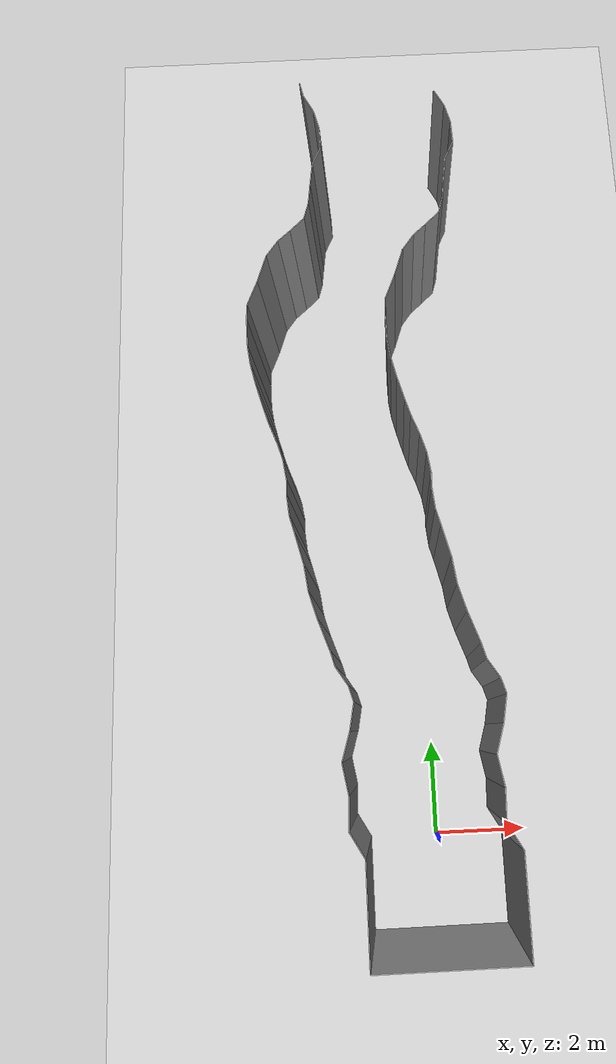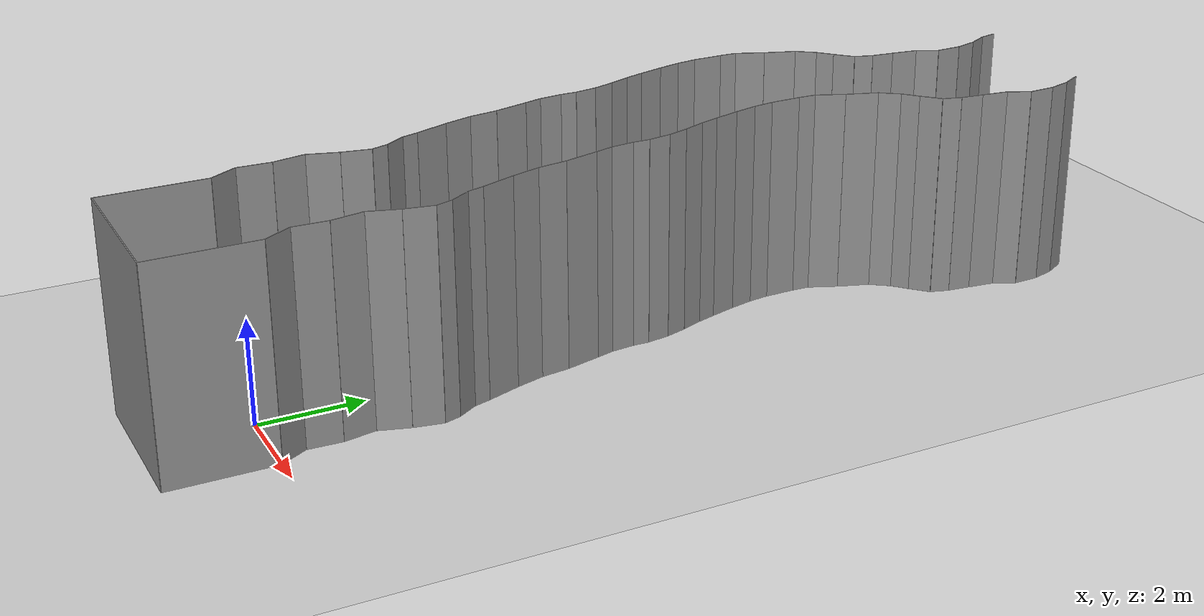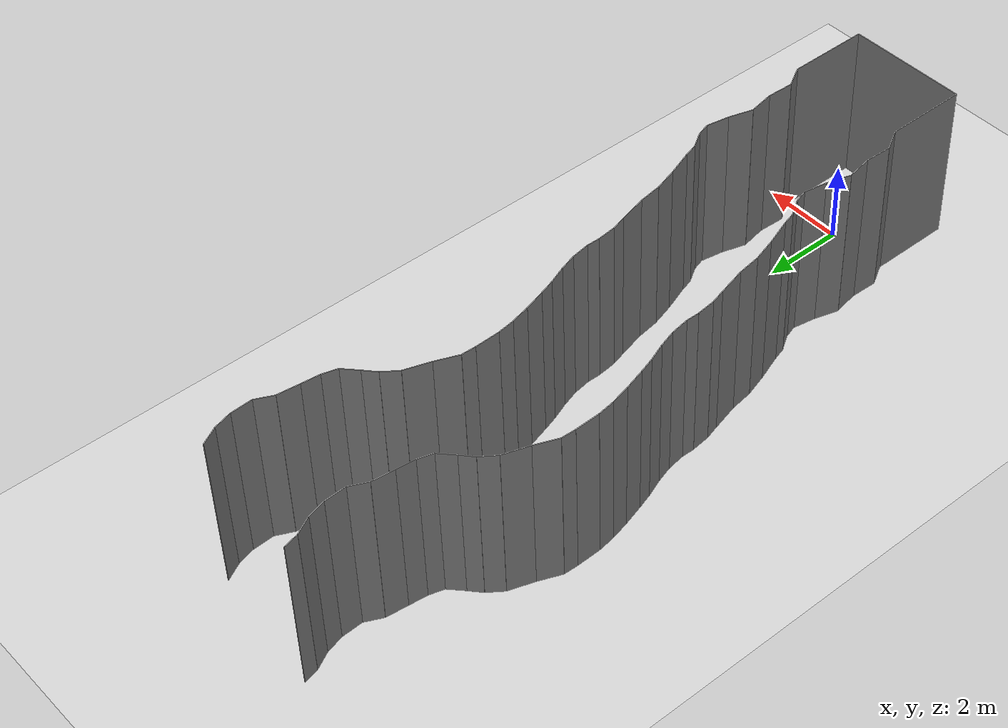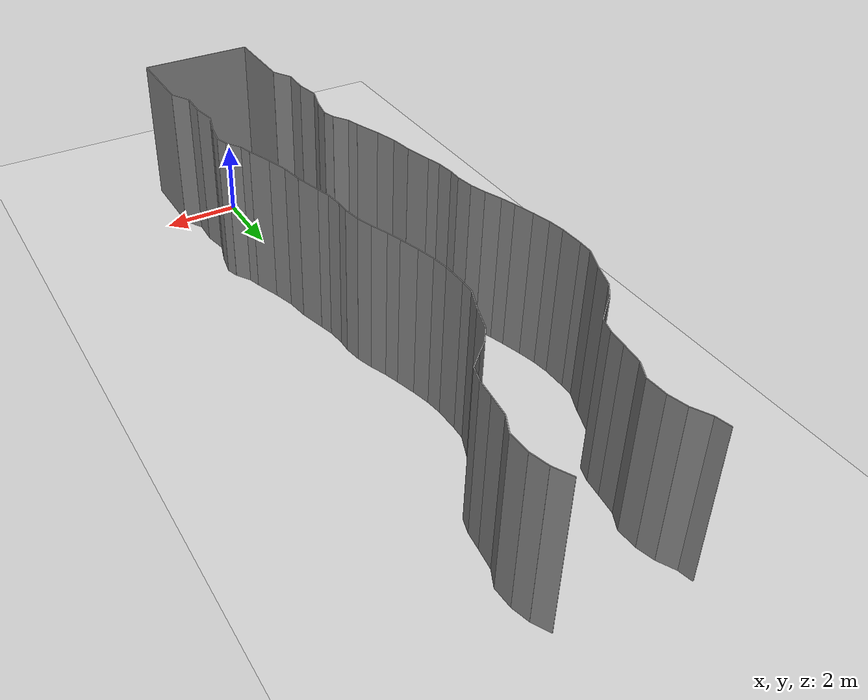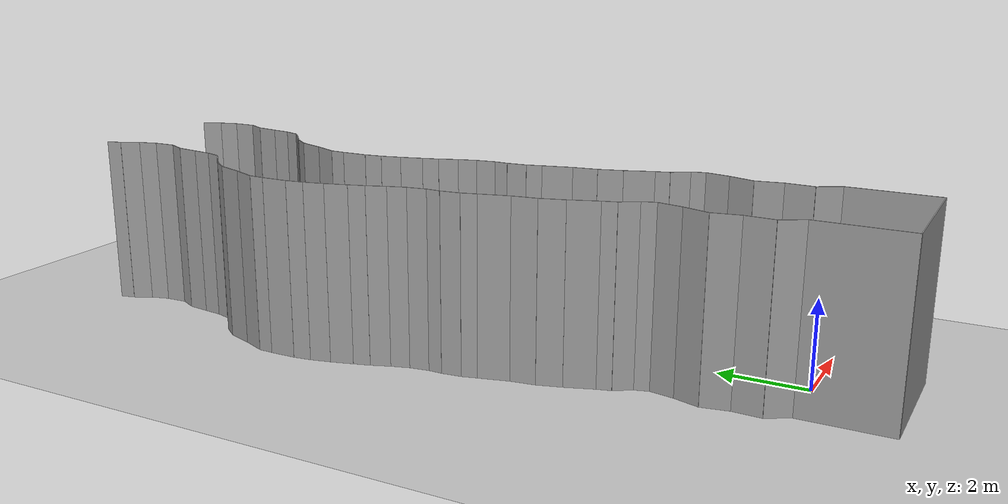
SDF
<sdf version="1.6">
 <world name="default">
  <model name="ground_plane">
   <static>1</static>
   <link name="link">
    <collision name="collision">
     <geometry><plane><normal>0 0 1</normal><size>200 200</size></plane></geometry>
     <surface><friction><ode><mu>100</mu><mu2>50</mu2></ode></friction></surface>
    </collision>
    <visual name="visual">
     <cast_shadows>0</cast_shadows>
     <geometry><plane><normal>0 0 1</normal><size>200 200</size></plane></geometry>
     <material>
      <script><uri>file://media/materials/scripts/gazebo.material</uri><name>Gazebo/Grey</name></script>
     </material>
    </visual>
   </link>
   <pose>0 100 0 0 -0 0</pose>
  </model>
  <model name="wall_back">
   <static>1</static>
   <pose>0.0 -2 2 0.0 0 0.0</pose>
   <link name="link">
    <collision name="collision"><geometry><box><size>3 0.02 4</size></box></geometry></collision>
    <visual name="visual">
     <material>
      <script><name>Gazebo/Grey</name><uri>file://media/materials/scripts/gazebo.material</uri></script>
     </material>
     <geometry><box><size>3 0.02 4</size></box></geometry>
    </visual>
   </link>
  </model>
  <model name="wall_left">
   <static>1</static>
   <pose>1.5 -1 2 0 0 0.00</pose>
   <link name="link">
    <collision name="collision"><geometry><box><size>0.02 2 4</size></box></geometry></collision>
    <visual name="visual">
     <material>
      <script><name>Gazebo/Grey</name><uri>file://media/materials/scripts/gazebo.material</uri></script>
     </material>
     <geometry><box><size>0.02 2 4</size></box></geometry>
    </visual>
   </link>
  </model>
  <model name="wall_right">
   <static>1</static>
   <pose>-1.5 -1 2 0 0 0.00</pose>
   <link name="link">
    <collision name="collision"><geometry><box><size>0.02 2 4</size></box></geometry></collision>
    <visual name="visual">
     <material>
      <script><name>Gazebo/Grey</name><uri>file://media/materials/scripts/gazebo.material</uri></script>
     </material>
     <geometry><box><size>0.02 2 4</size></box></geometry>
    </visual>
   </link>
  </model>
  <model name="wall_0">
   <static>1</static>
   <pose>-1.646472720653088 0.2521328927211947 2 0 0 0.5262828498397113</pose>
   <link name="link">
    <collision name="collision"><geometry><box><size>0.02 0.583181801799 4</size></box></geometry></collision>
    <visual name="visual">
     <material>
      <script><name>Gazebo/Grey</name><uri>file://media/materials/scripts/gazebo.material</uri></script>
     </material>
     <geometry><box><size>0.02 0.583181801799 4</size></box></geometry>
    </visual>
   </link>
  </model>
  <model name="wall_1">
   <static>1</static>
   <pose>1.353527279346912 0.2521328927211947 2 0 0 0.5262828498397113</pose>
   <link name="link">
    <collision name="collision"><geometry><box><size>0.02 0.583181801799 4</size></box></geometry></collision>
    <visual name="visual">
     <material>
      <script><name>Gazebo/Grey</name><uri>file://media/materials/scripts/gazebo.material</uri></script>
     </material>
     <geometry><box><size>0.02 0.583181801799 4</size></box></geometry>
    </visual>
   </link>
  </model>
  <model name="wall_2">
   <static>1</static>
   <pose>-1.7805583796743014 0.8299118691459411 2 0 0 -0.03802008703757331</pose>
   <link name="link">
    <collision name="collision"><geometry><box><size>0.02 0.651763181308 4</size></box></geometry></collision>
    <visual name="visual">
     <material>
      <script><name>Gazebo/Grey</name><uri>file://media/materials/scripts/gazebo.material</uri></script>
     </material>
     <geometry><box><size>0.02 0.651763181308 4</size></box></geometry>
    </visual>
   </link>
  </model>
  <model name="wall_3">
   <static>1</static>
   <pose>1.2194416203256986 0.8299118691459411 2 0 0 -0.03802008703757331</pose>
   <link name="link">
    <collision name="collision"><geometry><box><size>0.02 0.651763181308 4</size></box></geometry></collision>
    <visual name="visual">
     <material>
      <script><name>Gazebo/Grey</name><uri>file://media/materials/scripts/gazebo.material</uri></script>
     </material>
     <geometry><box><size>0.02 0.651763181308 4</size></box></geometry>
    </visual>
   </link>
  </model>
  <model name="wall_4">
   <static>1</static>
   <pose>-1.8246142902141258 1.4657746014149375 2 0 0 0.1799781418398594</pose>
   <link name="link">
    <collision name="collision"><geometry><box><size>0.02 0.63061930879 4</size></box></geometry></collision>
    <visual name="visual">
     <material>
      <script><name>Gazebo/Grey</name><uri>file://media/materials/scripts/gazebo.material</uri></script>
     </material>
     <geometry><box><size>0.02 0.63061930879 4</size></box></geometry>
    </visual>
   </link>
  </model>
  <model name="wall_5">
   <static>1</static>
   <pose>1.1753857097858742 1.4657746014149375 2 0 0 0.1799781418398594</pose>
   <link name="link">
    <collision name="collision"><geometry><box><size>0.02 0.63061930879 4</size></box></geometry></collision>
    <visual name="visual">
     <material>
      <script><name>Gazebo/Grey</name><uri>file://media/materials/scripts/gazebo.material</uri></script>
     </material>
     <geometry><box><size>0.02 0.63061930879 4</size></box></geometry>
    </visual>
   </link>
  </model>
  <model name="wall_6">
   <static>1</static>
   <pose>-1.7928527109547967 2.067357282523565 2 0 0 -0.29395733413151454</pose>
   <link name="link">
    <collision name="collision"><geometry><box><size>0.02 0.608848775356 4</size></box></geometry></collision>
    <visual name="visual">
     <material>
      <script><name>Gazebo/Grey</name><uri>file://media/materials/scripts/gazebo.material</uri></script>
     </material>
     <geometry><box><size>0.02 0.608848775356 4</size></box></geometry>
    </visual>
   </link>
  </model>
  <model name="wall_7">
   <static>1</static>
   <pose>1.2071472890452033 2.067357282523565 2 0 0 -0.29395733413151454</pose>
   <link name="link">
    <collision name="collision"><geometry><box><size>0.02 0.608848775356 4</size></box></geometry></collision>
    <visual name="visual">
     <material>
      <script><name>Gazebo/Grey</name><uri>file://media/materials/scripts/gazebo.material</uri></script>
     </material>
     <geometry><box><size>0.02 0.608848775356 4</size></box></geometry>
    </visual>
   </link>
  </model>
  <model name="wall_8">
   <static>1</static>
   <pose>-1.654111112099372 2.636833541480434 2 0 0 -0.1797544799252827</pose>
   <link name="link">
    <collision name="collision"><geometry><box><size>0.02 0.565329253438 4</size></box></geometry></collision>
    <visual name="visual">
     <material>
      <script><name>Gazebo/Grey</name><uri>file://media/materials/scripts/gazebo.material</uri></script>
     </material>
     <geometry><box><size>0.02 0.565329253438 4</size></box></geometry>
    </visual>
   </link>
  </model>
  <model name="wall_9">
   <static>1</static>
   <pose>1.345888887900628 2.636833541480434 2 0 0 -0.1797544799252827</pose>
   <link name="link">
    <collision name="collision"><geometry><box><size>0.02 0.565329253438 4</size></box></geometry></collision>
    <visual name="visual">
     <material>
      <script><name>Gazebo/Grey</name><uri>file://media/materials/scripts/gazebo.material</uri></script>
     </material>
     <geometry><box><size>0.02 0.565329253438 4</size></box></geometry>
    </visual>
   </link>
  </model>
  <model name="wall_10">
   <static>1</static>
   <pose>-1.651624679783498 3.0721492965574253 2 0 0 0.2966365221625628</pose>
   <link name="link">
    <collision name="collision"><geometry><box><size>0.02 0.328770070746 4</size></box></geometry></collision>
    <visual name="visual">
     <material>
      <script><name>Gazebo/Grey</name><uri>file://media/materials/scripts/gazebo.material</uri></script>
     </material>
     <geometry><box><size>0.02 0.328770070746 4</size></box></geometry>
    </visual>
   </link>
  </model>
  <model name="wall_11">
   <static>1</static>
   <pose>1.348375320216502 3.0721492965574253 2 0 0 0.2966365221625628</pose>
   <link name="link">
    <collision name="collision"><geometry><box><size>0.02 0.328770070746 4</size></box></geometry></collision>
    <visual name="visual">
     <material>
      <script><name>Gazebo/Grey</name><uri>file://media/materials/scripts/gazebo.material</uri></script>
     </material>
     <geometry><box><size>0.02 0.328770070746 4</size></box></geometry>
    </visual>
   </link>
  </model>
  <model name="wall_12">
   <static>1</static>
   <pose>-1.8217730860297554 3.419943185669444 2 0 0 0.5697643503131937</pose>
   <link name="link">
    <collision name="collision"><geometry><box><size>0.02 0.452688827957 4</size></box></geometry></collision>
    <visual name="visual">
     <material>
      <script><name>Gazebo/Grey</name><uri>file://media/materials/scripts/gazebo.material</uri></script>
     </material>
     <geometry><box><size>0.02 0.452688827957 4</size></box></geometry>
    </visual>
   </link>
  </model>
  <model name="wall_13">
   <static>1</static>
   <pose>1.1782269139702446 3.419943185669444 2 0 0 0.5697643503131937</pose>
   <link name="link">
    <collision name="collision"><geometry><box><size>0.02 0.452688827957 4</size></box></geometry></collision>
    <visual name="visual">
     <material>
      <script><name>Gazebo/Grey</name><uri>file://media/materials/scripts/gazebo.material</uri></script>
     </material>
     <geometry><box><size>0.02 0.452688827957 4</size></box></geometry>
    </visual>
   </link>
  </model>
  <model name="wall_14">
   <static>1</static>
   <pose>-1.9887674820835646 3.7673717069043113 2 0 0 0.2788014066412116</pose>
   <link name="link">
    <collision name="collision"><geometry><box><size>0.02 0.326279274049 4</size></box></geometry></collision>
    <visual name="visual">
     <material>
      <script><name>Gazebo/Grey</name><uri>file://media/materials/scripts/gazebo.material</uri></script>
     </material>
     <geometry><box><size>0.02 0.326279274049 4</size></box></geometry>
    </visual>
   </link>
  </model>
  <model name="wall_15">
   <static>1</static>
   <pose>1.0112325179164354 3.7673717069043113 2 0 0 0.2788014066412116</pose>
   <link name="link">
    <collision name="collision"><geometry><box><size>0.02 0.326279274049 4</size></box></geometry></collision>
    <visual name="visual">
     <material>
      <script><name>Gazebo/Grey</name><uri>file://media/materials/scripts/gazebo.material</uri></script>
     </material>
     <geometry><box><size>0.02 0.326279274049 4</size></box></geometry>
    </visual>
   </link>
  </model>
  <model name="wall_16">
   <static>1</static>
   <pose>-2.1496737845620277 4.248490738769129 2 0 0 0.3435593770522331</pose>
   <link name="link">
    <collision name="collision"><geometry><box><size>0.02 0.688810674007 4</size></box></geometry></collision>
    <visual name="visual">
     <material>
      <script><name>Gazebo/Grey</name><uri>file://media/materials/scripts/gazebo.material</uri></script>
     </material>
     <geometry><box><size>0.02 0.688810674007 4</size></box></geometry>
    </visual>
   </link>
  </model>
  <model name="wall_17">
   <static>1</static>
   <pose>0.8503262154379723 4.248490738769129 2 0 0 0.3435593770522331</pose>
   <link name="link">
    <collision name="collision"><geometry><box><size>0.02 0.688810674007 4</size></box></geometry></collision>
    <visual name="visual">
     <material>
      <script><name>Gazebo/Grey</name><uri>file://media/materials/scripts/gazebo.material</uri></script>
     </material>
     <geometry><box><size>0.02 0.688810674007 4</size></box></geometry>
    </visual>
   </link>
  </model>
  <model name="wall_18">
   <static>1</static>
   <pose>-2.3453692192830045 4.846442544064273 2 0 0 0.28333763011179336</pose>
   <link name="link">
    <collision name="collision"><geometry><box><size>0.02 0.570076105899 4</size></box></geometry></collision>
    <visual name="visual">
     <material>
      <script><name>Gazebo/Grey</name><uri>file://media/materials/scripts/gazebo.material</uri></script>
     </material>
     <geometry><box><size>0.02 0.570076105899 4</size></box></geometry>
    </visual>
   </link>
  </model>
  <model name="wall_19">
   <static>1</static>
   <pose>0.6546307807169955 4.846442544064273 2 0 0 0.28333763011179336</pose>
   <link name="link">
    <collision name="collision"><geometry><box><size>0.02 0.570076105899 4</size></box></geometry></collision>
    <visual name="visual">
     <material>
      <script><name>Gazebo/Grey</name><uri>file://media/materials/scripts/gazebo.material</uri></script>
     </material>
     <geometry><box><size>0.02 0.570076105899 4</size></box></geometry>
    </visual>
   </link>
  </model>
  <model name="wall_20">
   <static>1</static>
   <pose>-2.464495090356621 5.401648394360598 2 0 0 0.1391848641803248</pose>
   <link name="link">
    <collision name="collision"><geometry><box><size>0.02 0.568564181072 4</size></box></geometry></collision>
    <visual name="visual">
     <material>
      <script><name>Gazebo/Grey</name><uri>file://media/materials/scripts/gazebo.material</uri></script>
     </material>
     <geometry><box><size>0.02 0.568564181072 4</size></box></geometry>
    </visual>
   </link>
  </model>
  <model name="wall_21">
   <static>1</static>
   <pose>0.5355049096433788 5.401648394360598 2 0 0 0.1391848641803248</pose>
   <link name="link">
    <collision name="collision"><geometry><box><size>0.02 0.568564181072 4</size></box></geometry></collision>
    <visual name="visual">
     <material>
      <script><name>Gazebo/Grey</name><uri>file://media/materials/scripts/gazebo.material</uri></script>
     </material>
     <geometry><box><size>0.02 0.568564181072 4</size></box></geometry>
    </visual>
   </link>
  </model>
  <model name="wall_22">
   <static>1</static>
   <pose>-2.5908645229118625 6.020460067990556 2 0 0 0.25224741727527383</pose>
   <link name="link">
    <collision name="collision"><geometry><box><size>0.02 0.696602220084 4</size></box></geometry></collision>
    <visual name="visual">
     <material>
      <script><name>Gazebo/Grey</name><uri>file://media/materials/scripts/gazebo.material</uri></script>
     </material>
     <geometry><box><size>0.02 0.696602220084 4</size></box></geometry>
    </visual>
   </link>
  </model>
  <model name="wall_23">
   <static>1</static>
   <pose>0.40913547708813747 6.020460067990556 2 0 0 0.25224741727527383</pose>
   <link name="link">
    <collision name="collision"><geometry><box><size>0.02 0.696602220084 4</size></box></geometry></collision>
    <visual name="visual">
     <material>
      <script><name>Gazebo/Grey</name><uri>file://media/materials/scripts/gazebo.material</uri></script>
     </material>
     <geometry><box><size>0.02 0.696602220084 4</size></box></geometry>
    </visual>
   </link>
  </model>
  <model name="wall_24">
   <static>1</static>
   <pose>-2.7244688160468784 6.529034117871786 2 0 0 0.2660243439465342</pose>
   <link name="link">
    <collision name="collision"><geometry><box><size>0.02 0.355081017718 4</size></box></geometry></collision>
    <visual name="visual">
     <material>
      <script><name>Gazebo/Grey</name><uri>file://media/materials/scripts/gazebo.material</uri></script>
     </material>
     <geometry><box><size>0.02 0.355081017718 4</size></box></geometry>
    </visual>
   </link>
  </model>
  <model name="wall_25">
   <static>1</static>
   <pose>0.2755311839531216 6.529034117871786 2 0 0 0.2660243439465342</pose>
   <link name="link">
    <collision name="collision"><geometry><box><size>0.02 0.355081017718 4</size></box></geometry></collision>
    <visual name="visual">
     <material>
      <script><name>Gazebo/Grey</name><uri>file://media/materials/scripts/gazebo.material</uri></script>
     </material>
     <geometry><box><size>0.02 0.355081017718 4</size></box></geometry>
    </visual>
   </link>
  </model>
  <model name="wall_26">
   <static>1</static>
   <pose>-2.7943474655296257 6.927998866993099 2 0 0 0.1015674703593804</pose>
   <link name="link">
    <collision name="collision"><geometry><box><size>0.02 0.457697678211 4</size></box></geometry></collision>
    <visual name="visual">
     <material>
      <script><name>Gazebo/Grey</name><uri>file://media/materials/scripts/gazebo.material</uri></script>
     </material>
     <geometry><box><size>0.02 0.457697678211 4</size></box></geometry>
    </visual>
   </link>
  </model>
  <model name="wall_27">
   <static>1</static>
   <pose>0.20565253447037435 6.927998866993099 2 0 0 0.1015674703593804</pose>
   <link name="link">
    <collision name="collision"><geometry><box><size>0.02 0.457697678211 4</size></box></geometry></collision>
    <visual name="visual">
     <material>
      <script><name>Gazebo/Grey</name><uri>file://media/materials/scripts/gazebo.material</uri></script>
     </material>
     <geometry><box><size>0.02 0.457697678211 4</size></box></geometry>
    </visual>
   </link>
  </model>
  <model name="wall_28">
   <static>1</static>
   <pose>-2.813771798485691 7.314480452146644 2 0 0 -0.023792948814899594</pose>
   <link name="link">
    <collision name="collision"><geometry><box><size>0.02 0.317714182185 4</size></box></geometry></collision>
    <visual name="visual">
     <material>
      <script><name>Gazebo/Grey</name><uri>file://media/materials/scripts/gazebo.material</uri></script>
     </material>
     <geometry><box><size>0.02 0.317714182185 4</size></box></geometry>
    </visual>
   </link>
  </model>
  <model name="wall_29">
   <static>1</static>
   <pose>0.18622820151430908 7.314480452146644 2 0 0 -0.023792948814899594</pose>
   <link name="link">
    <collision name="collision"><geometry><box><size>0.02 0.317714182185 4</size></box></geometry></collision>
    <visual name="visual">
     <material>
      <script><name>Gazebo/Grey</name><uri>file://media/materials/scripts/gazebo.material</uri></script>
     </material>
     <geometry><box><size>0.02 0.317714182185 4</size></box></geometry>
    </visual>
   </link>
  </model>
  <model name="wall_30">
   <static>1</static>
   <pose>-2.842885285728868 7.694288640828782 2 0 0 0.14775419900061726</pose>
   <link name="link">
    <collision name="collision"><geometry><box><size>0.02 0.44686103244 4</size></box></geometry></collision>
    <visual name="visual">
     <material>
      <script><name>Gazebo/Grey</name><uri>file://media/materials/scripts/gazebo.material</uri></script>
     </material>
     <geometry><box><size>0.02 0.44686103244 4</size></box></geometry>
    </visual>
   </link>
  </model>
  <model name="wall_31">
   <static>1</static>
   <pose>0.157114714271132 7.694288640828782 2 0 0 0.14775419900061726</pose>
   <link name="link">
    <collision name="collision"><geometry><box><size>0.02 0.44686103244 4</size></box></geometry></collision>
    <visual name="visual">
     <material>
      <script><name>Gazebo/Grey</name><uri>file://media/materials/scripts/gazebo.material</uri></script>
     </material>
     <geometry><box><size>0.02 0.44686103244 4</size></box></geometry>
    </visual>
   </link>
  </model>
  <model name="wall_32">
   <static>1</static>
   <pose>-2.937693382810968 8.119197226541164 2 0 0 0.2947896951456151</pose>
   <link name="link">
    <collision name="collision"><geometry><box><size>0.02 0.426210374705 4</size></box></geometry></collision>
    <visual name="visual">
     <material>
      <script><name>Gazebo/Grey</name><uri>file://media/materials/scripts/gazebo.material</uri></script>
     </material>
     <geometry><box><size>0.02 0.426210374705 4</size></box></geometry>
    </visual>
   </link>
  </model>
  <model name="wall_33">
   <static>1</static>
   <pose>0.062306617189031854 8.119197226541164 2 0 0 0.2947896951456151</pose>
   <link name="link">
    <collision name="collision"><geometry><box><size>0.02 0.426210374705 4</size></box></geometry></collision>
    <visual name="visual">
     <material>
      <script><name>Gazebo/Grey</name><uri>file://media/materials/scripts/gazebo.material</uri></script>
     </material>
     <geometry><box><size>0.02 0.426210374705 4</size></box></geometry>
    </visual>
   </link>
  </model>
  <model name="wall_34">
   <static>1</static>
   <pose>-3.0810454975317696 8.535709995251565 2 0 0 0.3658107050440577</pose>
   <link name="link">
    <collision name="collision"><geometry><box><size>0.02 0.455327663276 4</size></box></geometry></collision>
    <visual name="visual">
     <material>
      <script><name>Gazebo/Grey</name><uri>file://media/materials/scripts/gazebo.material</uri></script>
     </material>
     <geometry><box><size>0.02 0.455327663276 4</size></box></geometry>
    </visual>
   </link>
  </model>
  <model name="wall_35">
   <static>1</static>
   <pose>-0.0810454975317696 8.535709995251565 2 0 0 0.3658107050440577</pose>
   <link name="link">
    <collision name="collision"><geometry><box><size>0.02 0.455327663276 4</size></box></geometry></collision>
    <visual name="visual">
     <material>
      <script><name>Gazebo/Grey</name><uri>file://media/materials/scripts/gazebo.material</uri></script>
     </material>
     <geometry><box><size>0.02 0.455327663276 4</size></box></geometry>
    </visual>
   </link>
  </model>
  <model name="wall_36">
   <static>1</static>
   <pose>-3.2181885288587333 8.930879608150983 2 0 0 0.29615059662219506</pose>
   <link name="link">
    <collision name="collision"><geometry><box><size>0.02 0.381757807621 4</size></box></geometry></collision>
    <visual name="visual">
     <material>
      <script><name>Gazebo/Grey</name><uri>file://media/materials/scripts/gazebo.material</uri></script>
     </material>
     <geometry><box><size>0.02 0.381757807621 4</size></box></geometry>
    </visual>
   </link>
  </model>
  <model name="wall_37">
   <static>1</static>
   <pose>-0.2181885288587333 8.930879608150983 2 0 0 0.29615059662219506</pose>
   <link name="link">
    <collision name="collision"><geometry><box><size>0.02 0.381757807621 4</size></box></geometry></collision>
    <visual name="visual">
     <material>
      <script><name>Gazebo/Grey</name><uri>file://media/materials/scripts/gazebo.material</uri></script>
     </material>
     <geometry><box><size>0.02 0.381757807621 4</size></box></geometry>
    </visual>
   </link>
  </model>
  <model name="wall_38">
   <static>1</static>
   <pose>-3.3446470436890436 9.365705057543302 2 0 0 0.2734520063304953</pose>
   <link name="link">
    <collision name="collision"><geometry><box><size>0.02 0.523980989084 4</size></box></geometry></collision>
    <visual name="visual">
     <material>
      <script><name>Gazebo/Grey</name><uri>file://media/materials/scripts/gazebo.material</uri></script>
     </material>
     <geometry><box><size>0.02 0.523980989084 4</size></box></geometry>
    </visual>
   </link>
  </model>
  <model name="wall_39">
   <static>1</static>
   <pose>-0.34464704368904364 9.365705057543302 2 0 0 0.2734520063304953</pose>
   <link name="link">
    <collision name="collision"><geometry><box><size>0.02 0.523980989084 4</size></box></geometry></collision>
    <visual name="visual">
     <material>
      <script><name>Gazebo/Grey</name><uri>file://media/materials/scripts/gazebo.material</uri></script>
     </material>
     <geometry><box><size>0.02 0.523980989084 4</size></box></geometry>
    </visual>
   </link>
  </model>
  <model name="wall_40">
   <static>1</static>
   <pose>-3.4694642354787946 9.847987940979522 2 0 0 0.23084731840499068</pose>
   <link name="link">
    <collision name="collision"><geometry><box><size>0.02 0.472590062462 4</size></box></geometry></collision>
    <visual name="visual">
     <material>
      <script><name>Gazebo/Grey</name><uri>file://media/materials/scripts/gazebo.material</uri></script>
     </material>
     <geometry><box><size>0.02 0.472590062462 4</size></box></geometry>
    </visual>
   </link>
  </model>
  <model name="wall_41">
   <static>1</static>
   <pose>-0.46946423547879457 9.847987940979522 2 0 0 0.23084731840499068</pose>
   <link name="link">
    <collision name="collision"><geometry><box><size>0.02 0.472590062462 4</size></box></geometry></collision>
    <visual name="visual">
     <material>
      <script><name>Gazebo/Grey</name><uri>file://media/materials/scripts/gazebo.material</uri></script>
     </material>
     <geometry><box><size>0.02 0.472590062462 4</size></box></geometry>
    </visual>
   </link>
  </model>
  <model name="wall_42">
   <static>1</static>
   <pose>-3.550245482368944 10.282113419791324 2 0 0 0.13015921709245903</pose>
   <link name="link">
    <collision name="collision"><geometry><box><size>0.02 0.411679649236 4</size></box></geometry></collision>
    <visual name="visual">
     <material>
      <script><name>Gazebo/Grey</name><uri>file://media/materials/scripts/gazebo.material</uri></script>
     </material>
     <geometry><box><size>0.02 0.411679649236 4</size></box></geometry>
    </visual>
   </link>
  </model>
  <model name="wall_43">
   <static>1</static>
   <pose>-0.5502454823689442 10.282113419791324 2 0 0 0.13015921709245903</pose>
   <link name="link">
    <collision name="collision"><geometry><box><size>0.02 0.411679649236 4</size></box></geometry></collision>
    <visual name="visual">
     <material>
      <script><name>Gazebo/Grey</name><uri>file://media/materials/scripts/gazebo.material</uri></script>
     </material>
     <geometry><box><size>0.02 0.411679649236 4</size></box></geometry>
    </visual>
   </link>
  </model>
  <model name="wall_44">
   <static>1</static>
   <pose>-3.582566978388316 10.788789284754214 2 0 0 0.01852251150257199</pose>
   <link name="link">
    <collision name="collision"><geometry><box><size>0.02 0.605258203618 4</size></box></geometry></collision>
    <visual name="visual">
     <material>
      <script><name>Gazebo/Grey</name><uri>file://media/materials/scripts/gazebo.material</uri></script>
     </material>
     <geometry><box><size>0.02 0.605258203618 4</size></box></geometry>
    </visual>
   </link>
  </model>
  <model name="wall_45">
   <static>1</static>
   <pose>-0.5825669783883161 10.788789284754214 2 0 0 0.01852251150257199</pose>
   <link name="link">
    <collision name="collision"><geometry><box><size>0.02 0.605258203618 4</size></box></geometry></collision>
    <visual name="visual">
     <material>
      <script><name>Gazebo/Grey</name><uri>file://media/materials/scripts/gazebo.material</uri></script>
     </material>
     <geometry><box><size>0.02 0.605258203618 4</size></box></geometry>
    </visual>
   </link>
  </model>
  <model name="wall_46">
   <static>1</static>
   <pose>-3.580344865107751 11.264861147872066 2 0 0 -0.04508461059237172</pose>
   <link name="link">
    <collision name="collision"><geometry><box><size>0.02 0.347342294705 4</size></box></geometry></collision>
    <visual name="visual">
     <material>
      <script><name>Gazebo/Grey</name><uri>file://media/materials/scripts/gazebo.material</uri></script>
     </material>
     <geometry><box><size>0.02 0.347342294705 4</size></box></geometry>
    </visual>
   </link>
  </model>
  <model name="wall_47">
   <static>1</static>
   <pose>-0.580344865107751 11.264861147872066 2 0 0 -0.04508461059237172</pose>
   <link name="link">
    <collision name="collision"><geometry><box><size>0.02 0.347342294705 4</size></box></geometry></collision>
    <visual name="visual">
     <material>
      <script><name>Gazebo/Grey</name><uri>file://media/materials/scripts/gazebo.material</uri></script>
     </material>
     <geometry><box><size>0.02 0.347342294705 4</size></box></geometry>
    </visual>
   </link>
  </model>
  <model name="wall_48">
   <static>1</static>
   <pose>-3.4586854255687363 11.709851498230915 2 0 0 -0.39701419454328973</pose>
   <link name="link">
    <collision name="collision"><geometry><box><size>0.02 0.588787470759 4</size></box></geometry></collision>
    <visual name="visual">
     <material>
      <script><name>Gazebo/Grey</name><uri>file://media/materials/scripts/gazebo.material</uri></script>
     </material>
     <geometry><box><size>0.02 0.588787470759 4</size></box></geometry>
    </visual>
   </link>
  </model>
  <model name="wall_49">
   <static>1</static>
   <pose>-0.45868542556873626 11.709851498230915 2 0 0 -0.39701419454328973</pose>
   <link name="link">
    <collision name="collision"><geometry><box><size>0.02 0.588787470759 4</size></box></geometry></collision>
    <visual name="visual">
     <material>
      <script><name>Gazebo/Grey</name><uri>file://media/materials/scripts/gazebo.material</uri></script>
     </material>
     <geometry><box><size>0.02 0.588787470759 4</size></box></geometry>
    </visual>
   </link>
  </model>
  <model name="wall_50">
   <static>1</static>
   <pose>-3.24060932271591 12.28417778958552 2 0 0 -0.33152683761226154</pose>
   <link name="link">
    <collision name="collision"><geometry><box><size>0.02 0.640540937476 4</size></box></geometry></collision>
    <visual name="visual">
     <material>
      <script><name>Gazebo/Grey</name><uri>file://media/materials/scripts/gazebo.material</uri></script>
     </material>
     <geometry><box><size>0.02 0.640540937476 4</size></box></geometry>
    </visual>
   </link>
  </model>
  <model name="wall_51">
   <static>1</static>
   <pose>-0.24060932271591007 12.28417778958552 2 0 0 -0.33152683761226154</pose>
   <link name="link">
    <collision name="collision"><geometry><box><size>0.02 0.640540937476 4</size></box></geometry></collision>
    <visual name="visual">
     <material>
      <script><name>Gazebo/Grey</name><uri>file://media/materials/scripts/gazebo.material</uri></script>
     </material>
     <geometry><box><size>0.02 0.640540937476 4</size></box></geometry>
    </visual>
   </link>
  </model>
  <model name="wall_52">
   <static>1</static>
   <pose>-3.006086805984376 12.760769874895562 2 0 0 -0.6433445775822338</pose>
   <link name="link">
    <collision name="collision"><geometry><box><size>0.02 0.434352690442 4</size></box></geometry></collision>
    <visual name="visual">
     <material>
      <script><name>Gazebo/Grey</name><uri>file://media/materials/scripts/gazebo.material</uri></script>
     </material>
     <geometry><box><size>0.02 0.434352690442 4</size></box></geometry>
    </visual>
   </link>
  </model>
  <model name="wall_53">
   <static>1</static>
   <pose>-0.0060868059843759426 12.760769874895562 2 0 0 -0.6433445775822338</pose>
   <link name="link">
    <collision name="collision"><geometry><box><size>0.02 0.434352690442 4</size></box></geometry></collision>
    <visual name="visual">
     <material>
      <script><name>Gazebo/Grey</name><uri>file://media/materials/scripts/gazebo.material</uri></script>
     </material>
     <geometry><box><size>0.02 0.434352690442 4</size></box></geometry>
    </visual>
   </link>
  </model>
  <model name="wall_54">
   <static>1</static>
   <pose>-2.739454994831752 13.052382663313654 2 0 0 -0.8580535071223694</pose>
   <link name="link">
    <collision name="collision"><geometry><box><size>0.02 0.360450432583 4</size></box></geometry></collision>
    <visual name="visual">
     <material>
      <script><name>Gazebo/Grey</name><uri>file://media/materials/scripts/gazebo.material</uri></script>
     </material>
     <geometry><box><size>0.02 0.360450432583 4</size></box></geometry>
    </visual>
   </link>
  </model>
  <model name="wall_55">
   <static>1</static>
   <pose>0.2605450051682481 13.052382663313654 2 0 0 -0.8580535071223694</pose>
   <link name="link">
    <collision name="collision"><geometry><box><size>0.02 0.360450432583 4</size></box></geometry></collision>
    <visual name="visual">
     <material>
      <script><name>Gazebo/Grey</name><uri>file://media/materials/scripts/gazebo.material</uri></script>
     </material>
     <geometry><box><size>0.02 0.360450432583 4</size></box></geometry>
    </visual>
   </link>
  </model>
  <model name="wall_56">
   <static>1</static>
   <pose>-2.442765302182221 13.318237347946736 2 0 0 -0.8253753274017734</pose>
   <link name="link">
    <collision name="collision"><geometry><box><size>0.02 0.436407090171 4</size></box></geometry></collision>
    <visual name="visual">
     <material>
      <script><name>Gazebo/Grey</name><uri>file://media/materials/scripts/gazebo.material</uri></script>
     </material>
     <geometry><box><size>0.02 0.436407090171 4</size></box></geometry>
    </visual>
   </link>
  </model>
  <model name="wall_57">
   <static>1</static>
   <pose>0.5572346978177789 13.318237347946736 2 0 0 -0.8253753274017734</pose>
   <link name="link">
    <collision name="collision"><geometry><box><size>0.02 0.436407090171 4</size></box></geometry></collision>
    <visual name="visual">
     <material>
      <script><name>Gazebo/Grey</name><uri>file://media/materials/scripts/gazebo.material</uri></script>
     </material>
     <geometry><box><size>0.02 0.436407090171 4</size></box></geometry>
    </visual>
   </link>
  </model>
  <model name="wall_58">
   <static>1</static>
   <pose>-2.2282351430202145 13.647066206327143 2 0 0 -0.2911829039636237</pose>
   <link name="link">
    <collision name="collision"><geometry><box><size>0.02 0.377543703002 4</size></box></geometry></collision>
    <visual name="visual">
     <material>
      <script><name>Gazebo/Grey</name><uri>file://media/materials/scripts/gazebo.material</uri></script>
     </material>
     <geometry><box><size>0.02 0.377543703002 4</size></box></geometry>
    </visual>
   </link>
  </model>
  <model name="wall_59">
   <static>1</static>
   <pose>0.7717648569797855 13.647066206327143 2 0 0 -0.2911829039636237</pose>
   <link name="link">
    <collision name="collision"><geometry><box><size>0.02 0.377543703002 4</size></box></geometry></collision>
    <visual name="visual">
     <material>
      <script><name>Gazebo/Grey</name><uri>file://media/materials/scripts/gazebo.material</uri></script>
     </material>
     <geometry><box><size>0.02 0.377543703002 4</size></box></geometry>
    </visual>
   </link>
  </model>
  <model name="wall_60">
   <static>1</static>
   <pose>-2.1481181544354944 14.05162863291459 2 0 0 -0.11535083121705701</pose>
   <link name="link">
    <collision name="collision"><geometry><box><size>0.02 0.450467467456 4</size></box></geometry></collision>
    <visual name="visual">
     <material>
      <script><name>Gazebo/Grey</name><uri>file://media/materials/scripts/gazebo.material</uri></script>
     </material>
     <geometry><box><size>0.02 0.450467467456 4</size></box></geometry>
    </visual>
   </link>
  </model>
  <model name="wall_61">
   <static>1</static>
   <pose>0.8518818455645056 14.05162863291459 2 0 0 -0.11535083121705701</pose>
   <link name="link">
    <collision name="collision"><geometry><box><size>0.02 0.450467467456 4</size></box></geometry></collision>
    <visual name="visual">
     <material>
      <script><name>Gazebo/Grey</name><uri>file://media/materials/scripts/gazebo.material</uri></script>
     </material>
     <geometry><box><size>0.02 0.450467467456 4</size></box></geometry>
    </visual>
   </link>
  </model>
  <model name="wall_62">
   <static>1</static>
   <pose>-2.0886561671691704 14.541182804408542 2 0 0 -0.12550870203060424</pose>
   <link name="link">
    <collision name="collision"><geometry><box><size>0.02 0.535849401125 4</size></box></geometry></collision>
    <visual name="visual">
     <material>
      <script><name>Gazebo/Grey</name><uri>file://media/materials/scripts/gazebo.material</uri></script>
     </material>
     <geometry><box><size>0.02 0.535849401125 4</size></box></geometry>
    </visual>
   </link>
  </model>
  <model name="wall_63">
   <static>1</static>
   <pose>0.9113438328308296 14.541182804408542 2 0 0 -0.12550870203060424</pose>
   <link name="link">
    <collision name="collision"><geometry><box><size>0.02 0.535849401125 4</size></box></geometry></collision>
    <visual name="visual">
     <material>
      <script><name>Gazebo/Grey</name><uri>file://media/materials/scripts/gazebo.material</uri></script>
     </material>
     <geometry><box><size>0.02 0.535849401125 4</size></box></geometry>
    </visual>
   </link>
  </model>
  <model name="wall_64">
   <static>1</static>
   <pose>-1.9539096341268596 15.012771359049564 2 0 0 -0.4571034165402817</pose>
   <link name="link">
    <collision name="collision"><geometry><box><size>0.02 0.458627813122 4</size></box></geometry></collision>
    <visual name="visual">
     <material>
      <script><name>Gazebo/Grey</name><uri>file://media/materials/scripts/gazebo.material</uri></script>
     </material>
     <geometry><box><size>0.02 0.458627813122 4</size></box></geometry>
    </visual>
   </link>
  </model>
  <model name="wall_65">
   <static>1</static>
   <pose>1.0460903658731404 15.012771359049564 2 0 0 -0.4571034165402817</pose>
   <link name="link">
    <collision name="collision"><geometry><box><size>0.02 0.458627813122 4</size></box></geometry></collision>
    <visual name="visual">
     <material>
      <script><name>Gazebo/Grey</name><uri>file://media/materials/scripts/gazebo.material</uri></script>
     </material>
     <geometry><box><size>0.02 0.458627813122 4</size></box></geometry>
    </visual>
   </link>
  </model>
  <model name="wall_66">
   <static>1</static>
   <pose>-1.8628098846125098 15.480112977974345 2 0 0 0.03862475835284269</pose>
   <link name="link">
    <collision name="collision"><geometry><box><size>0.02 0.523531072878 4</size></box></geometry></collision>
    <visual name="visual">
     <material>
      <script><name>Gazebo/Grey</name><uri>file://media/materials/scripts/gazebo.material</uri></script>
     </material>
     <geometry><box><size>0.02 0.523531072878 4</size></box></geometry>
    </visual>
   </link>
  </model>
  <model name="wall_67">
   <static>1</static>
   <pose>1.1371901153874902 15.480112977974345 2 0 0 0.03862475835284269</pose>
   <link name="link">
    <collision name="collision"><geometry><box><size>0.02 0.523531072878 4</size></box></geometry></collision>
    <visual name="visual">
     <material>
      <script><name>Gazebo/Grey</name><uri>file://media/materials/scripts/gazebo.material</uri></script>
     </material>
     <geometry><box><size>0.02 0.523531072878 4</size></box></geometry>
    </visual>
   </link>
  </model>
  <model name="wall_68">
   <static>1</static>
   <pose>-1.931021199458651 15.959623327962316 2 0 0 0.2605417813915949</pose>
   <link name="link">
    <collision name="collision"><geometry><box><size>0.02 0.451104630185 4</size></box></geometry></collision>
    <visual name="visual">
     <material>
      <script><name>Gazebo/Grey</name><uri>file://media/materials/scripts/gazebo.material</uri></script>
     </material>
     <geometry><box><size>0.02 0.451104630185 4</size></box></geometry>
    </visual>
   </link>
  </model>
  <model name="wall_69">
   <static>1</static>
   <pose>1.068978800541349 15.959623327962316 2 0 0 0.2605417813915949</pose>
   <link name="link">
    <collision name="collision"><geometry><box><size>0.02 0.451104630185 4</size></box></geometry></collision>
    <visual name="visual">
     <material>
      <script><name>Gazebo/Grey</name><uri>file://media/materials/scripts/gazebo.material</uri></script>
     </material>
     <geometry><box><size>0.02 0.451104630185 4</size></box></geometry>
    </visual>
   </link>
  </model>
  <model name="wall_70">
   <static>1</static>
   <pose>-2.0976159528118337 16.381046465872352 2 0 0 0.4898319808032977</pose>
   <link name="link">
    <collision name="collision"><geometry><box><size>0.02 0.46119750564 4</size></box></geometry></collision>
    <visual name="visual">
     <material>
      <script><name>Gazebo/Grey</name><uri>file://media/materials/scripts/gazebo.material</uri></script>
     </material>
     <geometry><box><size>0.02 0.46119750564 4</size></box></geometry>
    </visual>
   </link>
  </model>
  <model name="wall_71">
   <static>1</static>
   <pose>0.9023840471881663 16.381046465872352 2 0 0 0.4898319808032977</pose>
   <link name="link">
    <collision name="collision"><geometry><box><size>0.02 0.46119750564 4</size></box></geometry></collision>
    <visual name="visual">
     <material>
      <script><name>Gazebo/Grey</name><uri>file://media/materials/scripts/gazebo.material</uri></script>
     </material>
     <geometry><box><size>0.02 0.46119750564 4</size></box></geometry>
    </visual>
   </link>
  </model>
  <model name="wall_72">
   <static>1</static>
   <pose>-2.2449225391340746 16.759949421015538 2 0 0 0.21776068323996245</pose>
   <link name="link">
    <collision name="collision"><geometry><box><size>0.02 0.359325681317 4</size></box></geometry></collision>
    <visual name="visual">
     <material>
      <script><name>Gazebo/Grey</name><uri>file://media/materials/scripts/gazebo.material</uri></script>
     </material>
     <geometry><box><size>0.02 0.359325681317 4</size></box></geometry>
    </visual>
   </link>
  </model>
 </world>
</sdf>
